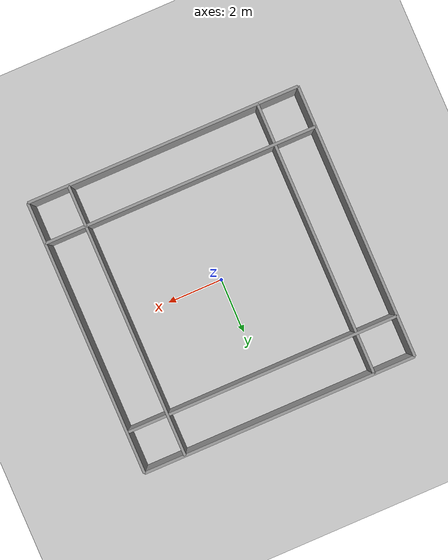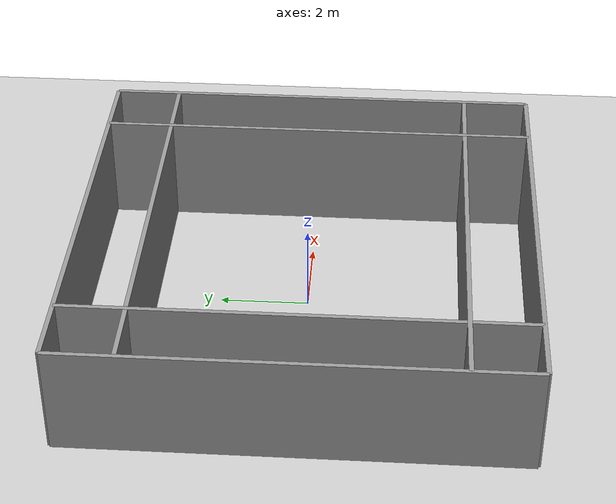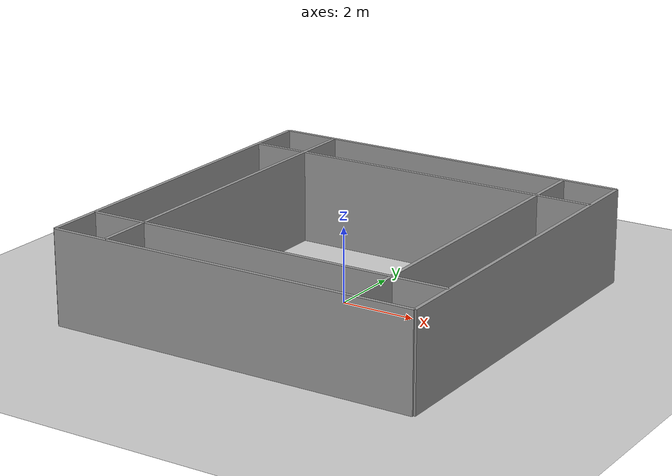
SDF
<?xml version='1.0'?>
<sdf version='1.7'>
  <world name='default'>
    <!-- Sun -->
    <include>
      <uri>model://sun</uri>
    </include>

    <!-- Ground Plane -->
    <include>
      <uri>model://ground_plane</uri>
    </include>

    <!-- Maze Walls -->
    <model name='maze'>
      <pose>0 0 0 0 0 0</pose>
      <static>true</static>

      <!-- Horizontal Walls -->
      <!-- Bottom Row -->
      <link name='Wall_0'>
        <collision name='Wall_0_Collision'>
          <geometry>
            <box>
              <size>10 0.1 2.5</size>
            </box>
          </geometry>
          <pose>0 0 1.25 0 0 0</pose>
        </collision>
        <visual name='Wall_0_Visual'>
          <geometry>
            <box>
              <size>10 0.1 2.5</size>
            </box>
          </geometry>
          <pose>0 0 1.25 0 0 0</pose>
          <material>
            <script>
              <uri>file://media/materials/scripts/gazebo.material</uri>
              <name>Gazebo/Grey</name>
            </script>
            <ambient>1 1 1 1</ambient>
          </material>
        </visual>
        <pose>0 -5 0 0 0 0</pose>
      </link>

      <!-- Top Row -->
      <link name='Wall_1'>
        <collision name='Wall_1_Collision'>
          <geometry>
            <box>
              <size>10 0.1 2.5</size>
            </box>
          </geometry>
          <pose>0 0 1.25 0 0 0</pose>
        </collision>
        <visual name='Wall_1_Visual'>
          <geometry>
            <box>
              <size>10 0.1 2.5</size>
            </box>
          </geometry>
          <pose>0 0 1.25 0 0 0</pose>
          <material>
            <script>
              <uri>file://media/materials/scripts/gazebo.material</uri>
              <name>Gazebo/Grey</name>
            </script>
            <ambient>1 1 1 1</ambient>
          </material>
        </visual>
        <pose>0 5 0 0 0 0</pose>
      </link>

      <!-- Center Horizontal Walls -->
      <link name='Wall_2'>
        <collision name='Wall_2_Collision'>
          <geometry>
            <box>
              <size>10 0.1 2.5</size>
            </box>
          </geometry>
          <pose>0 0 1.25 0 0 0</pose>
        </collision>
        <visual name='Wall_2_Visual'>
          <geometry>
            <box>
              <size>10 0.1 2.5</size>
            </box>
          </geometry>
          <pose>0 0 1.25 0 0 0</pose>
          <material>
            <script>
              <uri>file://media/materials/scripts/gazebo.material</uri>
              <name>Gazebo/Grey</name>
            </script>
            <ambient>1 1 1 1</ambient>
          </material>
        </visual>
        <pose>0 3.5 0 0 0 0</pose>
      </link>

      <link name='Wall_3'>
        <collision name='Wall_3_Collision'>
          <geometry>
            <box>
              <size>10 0.1 2.5</size>
            </box>
          </geometry>
          <pose>0 0 1.25 0 0 0</pose>
        </collision>
        <visual name='Wall_3_Visual'>
          <geometry>
            <box>
              <size>10 0.1 2.5</size>
            </box>
          </geometry>
          <pose>0 0 1.25 0 0 0</pose>
          <material>
            <script>
              <uri>file://media/materials/scripts/gazebo.material</uri>
              <name>Gazebo/Grey</name>
            </script>
            <ambient>1 1 1 1</ambient>
          </material>
        </visual>
        <pose>0 -3.5 0 0 0 0</pose>
      </link>

      <!-- Vertical Walls -->
      <!-- Left Column -->
      <link name='Wall_4'>
        <collision name='Wall_4_Collision'>
          <geometry>
            <box>
              <size>0.1 10 2.5</size>
            </box>
          </geometry>
          <pose>0 0 1.25 0 0 0</pose>
        </collision>
        <visual name='Wall_4_Visual'>
          <geometry>
            <box>
              <size>0.1 10 2.5</size>
            </box>
          </geometry>
          <pose>0 0 1.25 0 0 0</pose>
          <material>
            <script>
              <uri>file://media/materials/scripts/gazebo.material</uri>
              <name>Gazebo/Grey</name>
            </script>
            <ambient>1 1 1 1</ambient>
          </material>
        </visual>
        <pose>-5 0 0 0 0 0</pose>
      </link>

      <!-- Right Column -->
      <link name='Wall_5'>
        <collision name='Wall_5_Collision'>
          <geometry>
            <box>
              <size>0.1 10 2.5</size>
            </box>
          </geometry>
          <pose>0 0 1.25 0 0 0</pose>
        </collision>
        <visual name='Wall_5_Visual'>
          <geometry>
            <box>
              <size>0.1 10 2.5</size>
            </box>
          </geometry>
          <pose>0 0 1.25 0 0 0</pose>
          <material>
            <script>
              <uri>file://media/materials/scripts/gazebo.material</uri>
              <name>Gazebo/Grey</name>
            </script>
            <ambient>1 1 1 1</ambient>
          </material>
        </visual>
        <pose>5 0 0 0 0 0</pose>
      </link>

      <!-- Center Vertical Walls -->
      <link name='Wall_6'>
        <collision name='Wall_6_Collision'>
          <geometry>
            <box>
              <size>0.1 10 2.5</size>
            </box>
          </geometry>
          <pose>0 0 1.25 0 0 0</pose>
        </collision>
        <visual name='Wall_6_Visual'>
          <geometry>
            <box>
              <size>0.1 10 2.5</size>
            </box>
          </geometry>
          <pose>0 0 1.25 0 0 0</pose>
          <material>
            <script>
              <uri>file://media/materials/scripts/gazebo.material</uri>
              <name>Gazebo/Grey</name>
            </script>
            <ambient>1 1 1 1</ambient>
          </material>
        </visual>
        <pose>3.5 0 0 0 0 0</pose>
      </link>

      <link name='Wall_7'>
        <collision name='Wall_7_Collision'>
          <geometry>
            <box>
              <size>0.1 10 2.5</size>
            </box>
          </geometry>
          <pose>0 0 1.25 0 0 0</pose>
        </collision>
        <visual name='Wall_7_Visual'>
          <geometry>
            <box>
              <size>0.1 10 2.5</size>
            </box>
          </geometry>
          <pose>0 0 1.25 0 0 0</pose>
          <material>
            <script>
              <uri>file://media/materials/scripts/gazebo.material</uri>
              <name>Gazebo/Grey</name>
            </script>
            <ambient>1 1 1 1</ambient>
          </material>
        </visual>
        <pose>-3.5 0 0 0 0 0</pose>
      </link>
    </model>
  </world>
</sdf>
